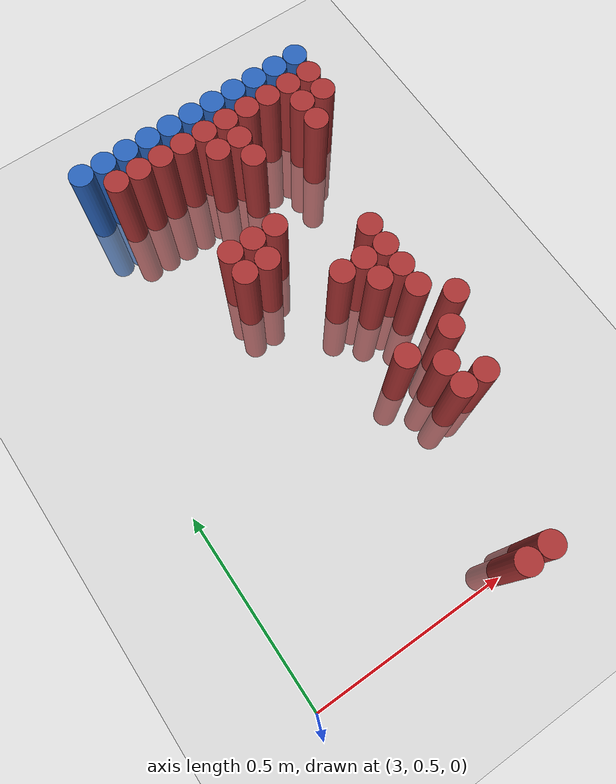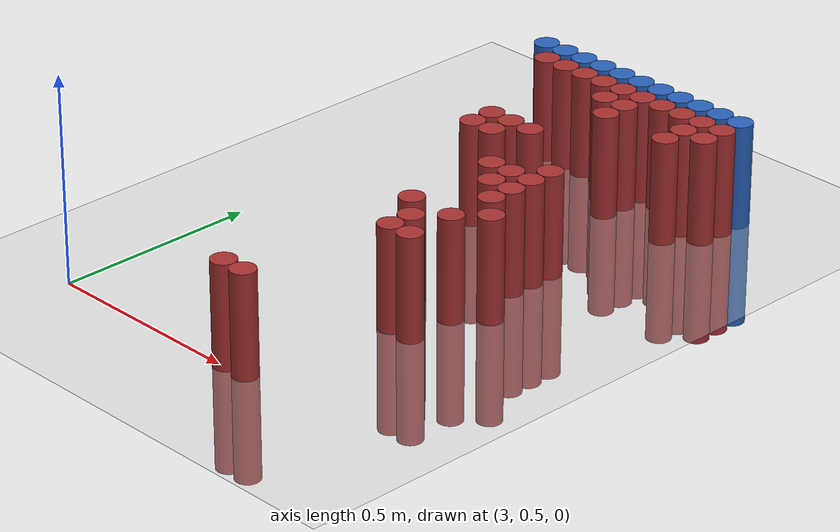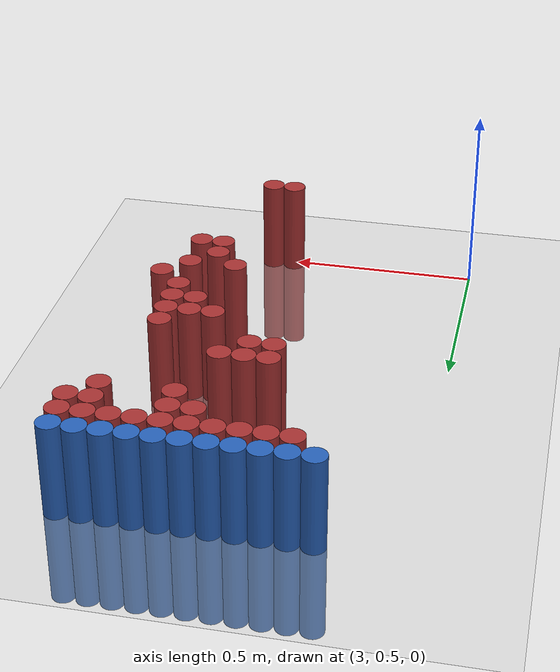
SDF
<sdf version="1.6">
 <world name="default">
  <model name="ground_plane">
   <static>1</static>
   <link name="link">
    <collision name="collision">
     <geometry><plane><normal>0 0 1</normal><size>100 100</size></plane></geometry>
     <surface><friction><ode><mu>100</mu><mu2>50</mu2></ode></friction></surface>
    </collision>
    <visual name="visual">
     <cast_shadows>0</cast_shadows>
     <geometry><plane><normal>0 0 1</normal><size>100 100</size></plane></geometry>
     <material>
      <script><uri>file://media/materials/scripts/gazebo.material</uri><name>Gazebo/Grey</name></script>
     </material>
    </visual>
   </link>
  </model>
  <model name="unit_cylinder_114">
   <static>1</static>
   <pose>3.210000 1.770000 0.000000 0.000000 0.000000 0.000000</pose>
   <link name="link">
    <inertial>
     <mass>1</mass>
     <inertia><ixx>0.145833</ixx><ixy>0</ixy><ixz>0</ixz><iyy>0.145833</iyy><iyz>0</iyz><izz>0.125</izz></inertia>
    </inertial>
    <collision name="collision">
     <geometry><cylinder><radius>0.030000</radius><length>0.5</length></cylinder></geometry>
    </collision>
    <visual name="visual">
     <geometry><cylinder><radius>0.030000</radius><length>0.5</length></cylinder></geometry>
     <material>
      <ambient>0.152000 0.379000 0.720000 1</ambient>
      <diffuse>0.152000 0.379000 0.720000 1</diffuse>
     </material>
     <material>
      <script><name>Gazebo/Grey</name><uri>file://media/materials/scripts/gazebo.material</uri></script>
     </material>
    </visual>
   </link>
  </model>
  <model name="unit_cylinder_115">
   <static>1</static>
   <pose>3.270000 1.770000 0.000000 0.000000 0.000000 0.000000</pose>
   <link name="link">
    <inertial>
     <mass>1</mass>
     <inertia><ixx>0.145833</ixx><ixy>0</ixy><ixz>0</ixz><iyy>0.145833</iyy><iyz>0</iyz><izz>0.125</izz></inertia>
    </inertial>
    <collision name="collision">
     <geometry><cylinder><radius>0.030000</radius><length>0.5</length></cylinder></geometry>
    </collision>
    <visual name="visual">
     <geometry><cylinder><radius>0.030000</radius><length>0.5</length></cylinder></geometry>
     <material>
      <ambient>0.152000 0.379000 0.720000 1</ambient>
      <diffuse>0.152000 0.379000 0.720000 1</diffuse>
     </material>
     <material>
      <script><name>Gazebo/Grey</name><uri>file://media/materials/scripts/gazebo.material</uri></script>
     </material>
    </visual>
   </link>
  </model>
  <model name="unit_cylinder_116">
   <static>1</static>
   <pose>3.330000 1.770000 0.000000 0.000000 0.000000 0.000000</pose>
   <link name="link">
    <inertial>
     <mass>1</mass>
     <inertia><ixx>0.145833</ixx><ixy>0</ixy><ixz>0</ixz><iyy>0.145833</iyy><iyz>0</iyz><izz>0.125</izz></inertia>
    </inertial>
    <collision name="collision">
     <geometry><cylinder><radius>0.030000</radius><length>0.5</length></cylinder></geometry>
    </collision>
    <visual name="visual">
     <geometry><cylinder><radius>0.030000</radius><length>0.5</length></cylinder></geometry>
     <material>
      <ambient>0.152000 0.379000 0.720000 1</ambient>
      <diffuse>0.152000 0.379000 0.720000 1</diffuse>
     </material>
     <material>
      <script><name>Gazebo/Grey</name><uri>file://media/materials/scripts/gazebo.material</uri></script>
     </material>
    </visual>
   </link>
  </model>
  <model name="unit_cylinder_117">
   <static>1</static>
   <pose>3.390000 1.770000 0.000000 0.000000 0.000000 0.000000</pose>
   <link name="link">
    <inertial>
     <mass>1</mass>
     <inertia><ixx>0.145833</ixx><ixy>0</ixy><ixz>0</ixz><iyy>0.145833</iyy><iyz>0</iyz><izz>0.125</izz></inertia>
    </inertial>
    <collision name="collision">
     <geometry><cylinder><radius>0.030000</radius><length>0.5</length></cylinder></geometry>
    </collision>
    <visual name="visual">
     <geometry><cylinder><radius>0.030000</radius><length>0.5</length></cylinder></geometry>
     <material>
      <ambient>0.152000 0.379000 0.720000 1</ambient>
      <diffuse>0.152000 0.379000 0.720000 1</diffuse>
     </material>
     <material>
      <script><name>Gazebo/Grey</name><uri>file://media/materials/scripts/gazebo.material</uri></script>
     </material>
    </visual>
   </link>
  </model>
  <model name="unit_cylinder_118">
   <static>1</static>
   <pose>3.450000 1.770000 0.000000 0.000000 0.000000 0.000000</pose>
   <link name="link">
    <inertial>
     <mass>1</mass>
     <inertia><ixx>0.145833</ixx><ixy>0</ixy><ixz>0</ixz><iyy>0.145833</iyy><iyz>0</iyz><izz>0.125</izz></inertia>
    </inertial>
    <collision name="collision">
     <geometry><cylinder><radius>0.030000</radius><length>0.5</length></cylinder></geometry>
    </collision>
    <visual name="visual">
     <geometry><cylinder><radius>0.030000</radius><length>0.5</length></cylinder></geometry>
     <material>
      <ambient>0.152000 0.379000 0.720000 1</ambient>
      <diffuse>0.152000 0.379000 0.720000 1</diffuse>
     </material>
     <material>
      <script><name>Gazebo/Grey</name><uri>file://media/materials/scripts/gazebo.material</uri></script>
     </material>
    </visual>
   </link>
  </model>
  <model name="unit_cylinder_119">
   <static>1</static>
   <pose>3.510000 1.770000 0.000000 0.000000 0.000000 0.000000</pose>
   <link name="link">
    <inertial>
     <mass>1</mass>
     <inertia><ixx>0.145833</ixx><ixy>0</ixy><ixz>0</ixz><iyy>0.145833</iyy><iyz>0</iyz><izz>0.125</izz></inertia>
    </inertial>
    <collision name="collision">
     <geometry><cylinder><radius>0.030000</radius><length>0.5</length></cylinder></geometry>
    </collision>
    <visual name="visual">
     <geometry><cylinder><radius>0.030000</radius><length>0.5</length></cylinder></geometry>
     <material>
      <ambient>0.152000 0.379000 0.720000 1</ambient>
      <diffuse>0.152000 0.379000 0.720000 1</diffuse>
     </material>
     <material>
      <script><name>Gazebo/Grey</name><uri>file://media/materials/scripts/gazebo.material</uri></script>
     </material>
    </visual>
   </link>
  </model>
  <model name="unit_cylinder_120">
   <static>1</static>
   <pose>3.570000 1.770000 0.000000 0.000000 0.000000 0.000000</pose>
   <link name="link">
    <inertial>
     <mass>1</mass>
     <inertia><ixx>0.145833</ixx><ixy>0</ixy><ixz>0</ixz><iyy>0.145833</iyy><iyz>0</iyz><izz>0.125</izz></inertia>
    </inertial>
    <collision name="collision">
     <geometry><cylinder><radius>0.030000</radius><length>0.5</length></cylinder></geometry>
    </collision>
    <visual name="visual">
     <geometry><cylinder><radius>0.030000</radius><length>0.5</length></cylinder></geometry>
     <material>
      <ambient>0.152000 0.379000 0.720000 1</ambient>
      <diffuse>0.152000 0.379000 0.720000 1</diffuse>
     </material>
     <material>
      <script><name>Gazebo/Grey</name><uri>file://media/materials/scripts/gazebo.material</uri></script>
     </material>
    </visual>
   </link>
  </model>
  <model name="unit_cylinder_121">
   <static>1</static>
   <pose>3.630000 1.770000 0.000000 0.000000 0.000000 0.000000</pose>
   <link name="link">
    <inertial>
     <mass>1</mass>
     <inertia><ixx>0.145833</ixx><ixy>0</ixy><ixz>0</ixz><iyy>0.145833</iyy><iyz>0</iyz><izz>0.125</izz></inertia>
    </inertial>
    <collision name="collision">
     <geometry><cylinder><radius>0.030000</radius><length>0.5</length></cylinder></geometry>
    </collision>
    <visual name="visual">
     <geometry><cylinder><radius>0.030000</radius><length>0.5</length></cylinder></geometry>
     <material>
      <ambient>0.152000 0.379000 0.720000 1</ambient>
      <diffuse>0.152000 0.379000 0.720000 1</diffuse>
     </material>
     <material>
      <script><name>Gazebo/Grey</name><uri>file://media/materials/scripts/gazebo.material</uri></script>
     </material>
    </visual>
   </link>
  </model>
  <model name="unit_cylinder_122">
   <static>1</static>
   <pose>3.690000 1.770000 0.000000 0.000000 0.000000 0.000000</pose>
   <link name="link">
    <inertial>
     <mass>1</mass>
     <inertia><ixx>0.145833</ixx><ixy>0</ixy><ixz>0</ixz><iyy>0.145833</iyy><iyz>0</iyz><izz>0.125</izz></inertia>
    </inertial>
    <collision name="collision">
     <geometry><cylinder><radius>0.030000</radius><length>0.5</length></cylinder></geometry>
    </collision>
    <visual name="visual">
     <geometry><cylinder><radius>0.030000</radius><length>0.5</length></cylinder></geometry>
     <material>
      <ambient>0.152000 0.379000 0.720000 1</ambient>
      <diffuse>0.152000 0.379000 0.720000 1</diffuse>
     </material>
     <material>
      <script><name>Gazebo/Grey</name><uri>file://media/materials/scripts/gazebo.material</uri></script>
     </material>
    </visual>
   </link>
  </model>
  <model name="unit_cylinder_123">
   <static>1</static>
   <pose>3.750000 1.770000 0.000000 0.000000 0.000000 0.000000</pose>
   <link name="link">
    <inertial>
     <mass>1</mass>
     <inertia><ixx>0.145833</ixx><ixy>0</ixy><ixz>0</ixz><iyy>0.145833</iyy><iyz>0</iyz><izz>0.125</izz></inertia>
    </inertial>
    <collision name="collision">
     <geometry><cylinder><radius>0.030000</radius><length>0.5</length></cylinder></geometry>
    </collision>
    <visual name="visual">
     <geometry><cylinder><radius>0.030000</radius><length>0.5</length></cylinder></geometry>
     <material>
      <ambient>0.152000 0.379000 0.720000 1</ambient>
      <diffuse>0.152000 0.379000 0.720000 1</diffuse>
     </material>
     <material>
      <script><name>Gazebo/Grey</name><uri>file://media/materials/scripts/gazebo.material</uri></script>
     </material>
    </visual>
   </link>
  </model>
  <model name="unit_cylinder_124">
   <static>1</static>
   <pose>3.810000 1.770000 0.000000 0.000000 0.000000 0.000000</pose>
   <link name="link">
    <inertial>
     <mass>1</mass>
     <inertia><ixx>0.145833</ixx><ixy>0</ixy><ixz>0</ixz><iyy>0.145833</iyy><iyz>0</iyz><izz>0.125</izz></inertia>
    </inertial>
    <collision name="collision">
     <geometry><cylinder><radius>0.030000</radius><length>0.5</length></cylinder></geometry>
    </collision>
    <visual name="visual">
     <geometry><cylinder><radius>0.030000</radius><length>0.5</length></cylinder></geometry>
     <material>
      <ambient>0.152000 0.379000 0.720000 1</ambient>
      <diffuse>0.152000 0.379000 0.720000 1</diffuse>
     </material>
     <material>
      <script><name>Gazebo/Grey</name><uri>file://media/materials/scripts/gazebo.material</uri></script>
     </material>
    </visual>
   </link>
  </model>
  <model name="unit_cylinder_135">
   <static>1</static>
   <pose>3.270000 1.710000 0.000000 0.000000 0.000000 0.000000</pose>
   <link name="link">
    <inertial>
     <mass>1</mass>
     <inertia><ixx>0.145833</ixx><ixy>0</ixy><ixz>0</ixz><iyy>0.145833</iyy><iyz>0</iyz><izz>0.125</izz></inertia>
    </inertial>
    <collision name="collision">
     <geometry><cylinder><radius>0.030000</radius><length>0.5</length></cylinder></geometry>
    </collision>
    <visual name="visual">
     <geometry><cylinder><radius>0.030000</radius><length>0.5</length></cylinder></geometry>
     <material>
      <ambient>0.648000 0.192000 0.192000 1</ambient>
      <diffuse>0.648000 0.192000 0.192000 1</diffuse>
     </material>
     <material>
      <script><name>Gazebo/Grey</name><uri>file://media/materials/scripts/gazebo.material</uri></script>
     </material>
    </visual>
   </link>
  </model>
  <model name="unit_cylinder_136">
   <static>1</static>
   <pose>3.330000 1.710000 0.000000 0.000000 0.000000 0.000000</pose>
   <link name="link">
    <inertial>
     <mass>1</mass>
     <inertia><ixx>0.145833</ixx><ixy>0</ixy><ixz>0</ixz><iyy>0.145833</iyy><iyz>0</iyz><izz>0.125</izz></inertia>
    </inertial>
    <collision name="collision">
     <geometry><cylinder><radius>0.030000</radius><length>0.5</length></cylinder></geometry>
    </collision>
    <visual name="visual">
     <geometry><cylinder><radius>0.030000</radius><length>0.5</length></cylinder></geometry>
     <material>
      <ambient>0.648000 0.192000 0.192000 1</ambient>
      <diffuse>0.648000 0.192000 0.192000 1</diffuse>
     </material>
     <material>
      <script><name>Gazebo/Grey</name><uri>file://media/materials/scripts/gazebo.material</uri></script>
     </material>
    </visual>
   </link>
  </model>
  <model name="unit_cylinder_137">
   <static>1</static>
   <pose>3.390000 1.710000 0.000000 0.000000 0.000000 0.000000</pose>
   <link name="link">
    <inertial>
     <mass>1</mass>
     <inertia><ixx>0.145833</ixx><ixy>0</ixy><ixz>0</ixz><iyy>0.145833</iyy><iyz>0</iyz><izz>0.125</izz></inertia>
    </inertial>
    <collision name="collision">
     <geometry><cylinder><radius>0.030000</radius><length>0.5</length></cylinder></geometry>
    </collision>
    <visual name="visual">
     <geometry><cylinder><radius>0.030000</radius><length>0.5</length></cylinder></geometry>
     <material>
      <ambient>0.648000 0.192000 0.192000 1</ambient>
      <diffuse>0.648000 0.192000 0.192000 1</diffuse>
     </material>
     <material>
      <script><name>Gazebo/Grey</name><uri>file://media/materials/scripts/gazebo.material</uri></script>
     </material>
    </visual>
   </link>
  </model>
  <model name="unit_cylinder_138">
   <static>1</static>
   <pose>3.450000 1.710000 0.000000 0.000000 0.000000 0.000000</pose>
   <link name="link">
    <inertial>
     <mass>1</mass>
     <inertia><ixx>0.145833</ixx><ixy>0</ixy><ixz>0</ixz><iyy>0.145833</iyy><iyz>0</iyz><izz>0.125</izz></inertia>
    </inertial>
    <collision name="collision">
     <geometry><cylinder><radius>0.030000</radius><length>0.5</length></cylinder></geometry>
    </collision>
    <visual name="visual">
     <geometry><cylinder><radius>0.030000</radius><length>0.5</length></cylinder></geometry>
     <material>
      <ambient>0.648000 0.192000 0.192000 1</ambient>
      <diffuse>0.648000 0.192000 0.192000 1</diffuse>
     </material>
     <material>
      <script><name>Gazebo/Grey</name><uri>file://media/materials/scripts/gazebo.material</uri></script>
     </material>
    </visual>
   </link>
  </model>
  <model name="unit_cylinder_139">
   <static>1</static>
   <pose>3.510000 1.710000 0.000000 0.000000 0.000000 0.000000</pose>
   <link name="link">
    <inertial>
     <mass>1</mass>
     <inertia><ixx>0.145833</ixx><ixy>0</ixy><ixz>0</ixz><iyy>0.145833</iyy><iyz>0</iyz><izz>0.125</izz></inertia>
    </inertial>
    <collision name="collision">
     <geometry><cylinder><radius>0.030000</radius><length>0.5</length></cylinder></geometry>
    </collision>
    <visual name="visual">
     <geometry><cylinder><radius>0.030000</radius><length>0.5</length></cylinder></geometry>
     <material>
      <ambient>0.648000 0.192000 0.192000 1</ambient>
      <diffuse>0.648000 0.192000 0.192000 1</diffuse>
     </material>
     <material>
      <script><name>Gazebo/Grey</name><uri>file://media/materials/scripts/gazebo.material</uri></script>
     </material>
    </visual>
   </link>
  </model>
  <model name="unit_cylinder_140">
   <static>1</static>
   <pose>3.570000 1.710000 0.000000 0.000000 0.000000 0.000000</pose>
   <link name="link">
    <inertial>
     <mass>1</mass>
     <inertia><ixx>0.145833</ixx><ixy>0</ixy><ixz>0</ixz><iyy>0.145833</iyy><iyz>0</iyz><izz>0.125</izz></inertia>
    </inertial>
    <collision name="collision">
     <geometry><cylinder><radius>0.030000</radius><length>0.5</length></cylinder></geometry>
    </collision>
    <visual name="visual">
     <geometry><cylinder><radius>0.030000</radius><length>0.5</length></cylinder></geometry>
     <material>
      <ambient>0.648000 0.192000 0.192000 1</ambient>
      <diffuse>0.648000 0.192000 0.192000 1</diffuse>
     </material>
     <material>
      <script><name>Gazebo/Grey</name><uri>file://media/materials/scripts/gazebo.material</uri></script>
     </material>
    </visual>
   </link>
  </model>
  <model name="unit_cylinder_141">
   <static>1</static>
   <pose>3.630000 1.710000 0.000000 0.000000 0.000000 0.000000</pose>
   <link name="link">
    <inertial>
     <mass>1</mass>
     <inertia><ixx>0.145833</ixx><ixy>0</ixy><ixz>0</ixz><iyy>0.145833</iyy><iyz>0</iyz><izz>0.125</izz></inertia>
    </inertial>
    <collision name="collision">
     <geometry><cylinder><radius>0.030000</radius><length>0.5</length></cylinder></geometry>
    </collision>
    <visual name="visual">
     <geometry><cylinder><radius>0.030000</radius><length>0.5</length></cylinder></geometry>
     <material>
      <ambient>0.648000 0.192000 0.192000 1</ambient>
      <diffuse>0.648000 0.192000 0.192000 1</diffuse>
     </material>
     <material>
      <script><name>Gazebo/Grey</name><uri>file://media/materials/scripts/gazebo.material</uri></script>
     </material>
    </visual>
   </link>
  </model>
  <model name="unit_cylinder_142">
   <static>1</static>
   <pose>3.690000 1.710000 0.000000 0.000000 0.000000 0.000000</pose>
   <link name="link">
    <inertial>
     <mass>1</mass>
     <inertia><ixx>0.145833</ixx><ixy>0</ixy><ixz>0</ixz><iyy>0.145833</iyy><iyz>0</iyz><izz>0.125</izz></inertia>
    </inertial>
    <collision name="collision">
     <geometry><cylinder><radius>0.030000</radius><length>0.5</length></cylinder></geometry>
    </collision>
    <visual name="visual">
     <geometry><cylinder><radius>0.030000</radius><length>0.5</length></cylinder></geometry>
     <material>
      <ambient>0.648000 0.192000 0.192000 1</ambient>
      <diffuse>0.648000 0.192000 0.192000 1</diffuse>
     </material>
     <material>
      <script><name>Gazebo/Grey</name><uri>file://media/materials/scripts/gazebo.material</uri></script>
     </material>
    </visual>
   </link>
  </model>
  <model name="unit_cylinder_143">
   <static>1</static>
   <pose>3.750000 1.710000 0.000000 0.000000 0.000000 0.000000</pose>
   <link name="link">
    <inertial>
     <mass>1</mass>
     <inertia><ixx>0.145833</ixx><ixy>0</ixy><ixz>0</ixz><iyy>0.145833</iyy><iyz>0</iyz><izz>0.125</izz></inertia>
    </inertial>
    <collision name="collision">
     <geometry><cylinder><radius>0.030000</radius><length>0.5</length></cylinder></geometry>
    </collision>
    <visual name="visual">
     <geometry><cylinder><radius>0.030000</radius><length>0.5</length></cylinder></geometry>
     <material>
      <ambient>0.648000 0.192000 0.192000 1</ambient>
      <diffuse>0.648000 0.192000 0.192000 1</diffuse>
     </material>
     <material>
      <script><name>Gazebo/Grey</name><uri>file://media/materials/scripts/gazebo.material</uri></script>
     </material>
    </visual>
   </link>
  </model>
  <model name="unit_cylinder_144">
   <static>1</static>
   <pose>3.810000 1.710000 0.000000 0.000000 0.000000 0.000000</pose>
   <link name="link">
    <inertial>
     <mass>1</mass>
     <inertia><ixx>0.145833</ixx><ixy>0</ixy><ixz>0</ixz><iyy>0.145833</iyy><iyz>0</iyz><izz>0.125</izz></inertia>
    </inertial>
    <collision name="collision">
     <geometry><cylinder><radius>0.030000</radius><length>0.5</length></cylinder></geometry>
    </collision>
    <visual name="visual">
     <geometry><cylinder><radius>0.030000</radius><length>0.5</length></cylinder></geometry>
     <material>
      <ambient>0.648000 0.192000 0.192000 1</ambient>
      <diffuse>0.648000 0.192000 0.192000 1</diffuse>
     </material>
     <material>
      <script><name>Gazebo/Grey</name><uri>file://media/materials/scripts/gazebo.material</uri></script>
     </material>
    </visual>
   </link>
  </model>
  <model name="unit_cylinder_146">
   <static>1</static>
   <pose>3.510000 1.650000 0.000000 0.000000 0.000000 0.000000</pose>
   <link name="link">
    <inertial>
     <mass>1</mass>
     <inertia><ixx>0.145833</ixx><ixy>0</ixy><ixz>0</ixz><iyy>0.145833</iyy><iyz>0</iyz><izz>0.125</izz></inertia>
    </inertial>
    <collision name="collision">
     <geometry><cylinder><radius>0.030000</radius><length>0.5</length></cylinder></geometry>
    </collision>
    <visual name="visual">
     <geometry><cylinder><radius>0.030000</radius><length>0.5</length></cylinder></geometry>
     <material>
      <ambient>0.648000 0.192000 0.192000 1</ambient>
      <diffuse>0.648000 0.192000 0.192000 1</diffuse>
     </material>
     <material>
      <script><name>Gazebo/Grey</name><uri>file://media/materials/scripts/gazebo.material</uri></script>
     </material>
    </visual>
   </link>
  </model>
  <model name="unit_cylinder_147">
   <static>1</static>
   <pose>3.570000 1.650000 0.000000 0.000000 0.000000 0.000000</pose>
   <link name="link">
    <inertial>
     <mass>1</mass>
     <inertia><ixx>0.145833</ixx><ixy>0</ixy><ixz>0</ixz><iyy>0.145833</iyy><iyz>0</iyz><izz>0.125</izz></inertia>
    </inertial>
    <collision name="collision">
     <geometry><cylinder><radius>0.030000</radius><length>0.5</length></cylinder></geometry>
    </collision>
    <visual name="visual">
     <geometry><cylinder><radius>0.030000</radius><length>0.5</length></cylinder></geometry>
     <material>
      <ambient>0.648000 0.192000 0.192000 1</ambient>
      <diffuse>0.648000 0.192000 0.192000 1</diffuse>
     </material>
     <material>
      <script><name>Gazebo/Grey</name><uri>file://media/materials/scripts/gazebo.material</uri></script>
     </material>
    </visual>
   </link>
  </model>
  <model name="unit_cylinder_148">
   <static>1</static>
   <pose>3.750000 1.650000 0.000000 0.000000 0.000000 0.000000</pose>
   <link name="link">
    <inertial>
     <mass>1</mass>
     <inertia><ixx>0.145833</ixx><ixy>0</ixy><ixz>0</ixz><iyy>0.145833</iyy><iyz>0</iyz><izz>0.125</izz></inertia>
    </inertial>
    <collision name="collision">
     <geometry><cylinder><radius>0.030000</radius><length>0.5</length></cylinder></geometry>
    </collision>
    <visual name="visual">
     <geometry><cylinder><radius>0.030000</radius><length>0.5</length></cylinder></geometry>
     <material>
      <ambient>0.648000 0.192000 0.192000 1</ambient>
      <diffuse>0.648000 0.192000 0.192000 1</diffuse>
     </material>
     <material>
      <script><name>Gazebo/Grey</name><uri>file://media/materials/scripts/gazebo.material</uri></script>
     </material>
    </visual>
   </link>
  </model>
  <model name="unit_cylinder_149">
   <static>1</static>
   <pose>3.810000 1.650000 0.000000 0.000000 0.000000 0.000000</pose>
   <link name="link">
    <inertial>
     <mass>1</mass>
     <inertia><ixx>0.145833</ixx><ixy>0</ixy><ixz>0</ixz><iyy>0.145833</iyy><iyz>0</iyz><izz>0.125</izz></inertia>
    </inertial>
    <collision name="collision">
     <geometry><cylinder><radius>0.030000</radius><length>0.5</length></cylinder></geometry>
    </collision>
    <visual name="visual">
     <geometry><cylinder><radius>0.030000</radius><length>0.5</length></cylinder></geometry>
     <material>
      <ambient>0.648000 0.192000 0.192000 1</ambient>
      <diffuse>0.648000 0.192000 0.192000 1</diffuse>
     </material>
     <material>
      <script><name>Gazebo/Grey</name><uri>file://media/materials/scripts/gazebo.material</uri></script>
     </material>
    </visual>
   </link>
  </model>
  <model name="unit_cylinder_151">
   <static>1</static>
   <pose>3.570000 1.590000 0.000000 0.000000 0.000000 0.000000</pose>
   <link name="link">
    <inertial>
     <mass>1</mass>
     <inertia><ixx>0.145833</ixx><ixy>0</ixy><ixz>0</ixz><iyy>0.145833</iyy><iyz>0</iyz><izz>0.125</izz></inertia>
    </inertial>
    <collision name="collision">
     <geometry><cylinder><radius>0.030000</radius><length>0.5</length></cylinder></geometry>
    </collision>
    <visual name="visual">
     <geometry><cylinder><radius>0.030000</radius><length>0.5</length></cylinder></geometry>
     <material>
      <ambient>0.648000 0.192000 0.192000 1</ambient>
      <diffuse>0.648000 0.192000 0.192000 1</diffuse>
     </material>
     <material>
      <script><name>Gazebo/Grey</name><uri>file://media/materials/scripts/gazebo.material</uri></script>
     </material>
    </visual>
   </link>
  </model>
  <model name="unit_cylinder_152">
   <static>1</static>
   <pose>3.750000 1.590000 0.000000 0.000000 0.000000 0.000000</pose>
   <link name="link">
    <inertial>
     <mass>1</mass>
     <inertia><ixx>0.145833</ixx><ixy>0</ixy><ixz>0</ixz><iyy>0.145833</iyy><iyz>0</iyz><izz>0.125</izz></inertia>
    </inertial>
    <collision name="collision">
     <geometry><cylinder><radius>0.030000</radius><length>0.5</length></cylinder></geometry>
    </collision>
    <visual name="visual">
     <geometry><cylinder><radius>0.030000</radius><length>0.5</length></cylinder></geometry>
     <material>
      <ambient>0.648000 0.192000 0.192000 1</ambient>
      <diffuse>0.648000 0.192000 0.192000 1</diffuse>
     </material>
     <material>
      <script><name>Gazebo/Grey</name><uri>file://media/materials/scripts/gazebo.material</uri></script>
     </material>
    </visual>
   </link>
  </model>
  <model name="unit_cylinder_161">
   <static>1</static>
   <pose>3.390000 1.410000 0.000000 0.000000 0.000000 0.000000</pose>
   <link name="link">
    <inertial>
     <mass>1</mass>
     <inertia><ixx>0.145833</ixx><ixy>0</ixy><ixz>0</ixz><iyy>0.145833</iyy><iyz>0</iyz><izz>0.125</izz></inertia>
    </inertial>
    <collision name="collision">
     <geometry><cylinder><radius>0.030000</radius><length>0.5</length></cylinder></geometry>
    </collision>
    <visual name="visual">
     <geometry><cylinder><radius>0.030000</radius><length>0.5</length></cylinder></geometry>
     <material>
      <ambient>0.648000 0.192000 0.192000 1</ambient>
      <diffuse>0.648000 0.192000 0.192000 1</diffuse>
     </material>
     <material>
      <script><name>Gazebo/Grey</name><uri>file://media/materials/scripts/gazebo.material</uri></script>
     </material>
    </visual>
   </link>
  </model>
  <model name="unit_cylinder_162">
   <static>1</static>
   <pose>3.450000 1.410000 0.000000 0.000000 0.000000 0.000000</pose>
   <link name="link">
    <inertial>
     <mass>1</mass>
     <inertia><ixx>0.145833</ixx><ixy>0</ixy><ixz>0</ixz><iyy>0.145833</iyy><iyz>0</iyz><izz>0.125</izz></inertia>
    </inertial>
    <collision name="collision">
     <geometry><cylinder><radius>0.030000</radius><length>0.5</length></cylinder></geometry>
    </collision>
    <visual name="visual">
     <geometry><cylinder><radius>0.030000</radius><length>0.5</length></cylinder></geometry>
     <material>
      <ambient>0.648000 0.192000 0.192000 1</ambient>
      <diffuse>0.648000 0.192000 0.192000 1</diffuse>
     </material>
     <material>
      <script><name>Gazebo/Grey</name><uri>file://media/materials/scripts/gazebo.material</uri></script>
     </material>
    </visual>
   </link>
  </model>
  <model name="unit_cylinder_163">
   <static>1</static>
   <pose>3.510000 1.410000 0.000000 0.000000 0.000000 0.000000</pose>
   <link name="link">
    <inertial>
     <mass>1</mass>
     <inertia><ixx>0.145833</ixx><ixy>0</ixy><ixz>0</ixz><iyy>0.145833</iyy><iyz>0</iyz><izz>0.125</izz></inertia>
    </inertial>
    <collision name="collision">
     <geometry><cylinder><radius>0.030000</radius><length>0.5</length></cylinder></geometry>
    </collision>
    <visual name="visual">
     <geometry><cylinder><radius>0.030000</radius><length>0.5</length></cylinder></geometry>
     <material>
      <ambient>0.648000 0.192000 0.192000 1</ambient>
      <diffuse>0.648000 0.192000 0.192000 1</diffuse>
     </material>
     <material>
      <script><name>Gazebo/Grey</name><uri>file://media/materials/scripts/gazebo.material</uri></script>
     </material>
    </visual>
   </link>
  </model>
  <model name="unit_cylinder_167">
   <static>1</static>
   <pose>3.390000 1.350000 0.000000 0.000000 0.000000 0.000000</pose>
   <link name="link">
    <inertial>
     <mass>1</mass>
     <inertia><ixx>0.145833</ixx><ixy>0</ixy><ixz>0</ixz><iyy>0.145833</iyy><iyz>0</iyz><izz>0.125</izz></inertia>
    </inertial>
    <collision name="collision">
     <geometry><cylinder><radius>0.030000</radius><length>0.5</length></cylinder></geometry>
    </collision>
    <visual name="visual">
     <geometry><cylinder><radius>0.030000</radius><length>0.5</length></cylinder></geometry>
     <material>
      <ambient>0.648000 0.192000 0.192000 1</ambient>
      <diffuse>0.648000 0.192000 0.192000 1</diffuse>
     </material>
     <material>
      <script><name>Gazebo/Grey</name><uri>file://media/materials/scripts/gazebo.material</uri></script>
     </material>
    </visual>
   </link>
  </model>
  <model name="unit_cylinder_168">
   <static>1</static>
   <pose>3.450000 1.350000 0.000000 0.000000 0.000000 0.000000</pose>
   <link name="link">
    <inertial>
     <mass>1</mass>
     <inertia><ixx>0.145833</ixx><ixy>0</ixy><ixz>0</ixz><iyy>0.145833</iyy><iyz>0</iyz><izz>0.125</izz></inertia>
    </inertial>
    <collision name="collision">
     <geometry><cylinder><radius>0.030000</radius><length>0.5</length></cylinder></geometry>
    </collision>
    <visual name="visual">
     <geometry><cylinder><radius>0.030000</radius><length>0.5</length></cylinder></geometry>
     <material>
      <ambient>0.648000 0.192000 0.192000 1</ambient>
      <diffuse>0.648000 0.192000 0.192000 1</diffuse>
     </material>
     <material>
      <script><name>Gazebo/Grey</name><uri>file://media/materials/scripts/gazebo.material</uri></script>
     </material>
    </visual>
   </link>
  </model>
  <model name="unit_cylinder_172">
   <static>1</static>
   <pose>3.690000 1.290000 0.000000 0.000000 0.000000 0.000000</pose>
   <link name="link">
    <inertial>
     <mass>1</mass>
     <inertia><ixx>0.145833</ixx><ixy>0</ixy><ixz>0</ixz><iyy>0.145833</iyy><iyz>0</iyz><izz>0.125</izz></inertia>
    </inertial>
    <collision name="collision">
     <geometry><cylinder><radius>0.030000</radius><length>0.5</length></cylinder></geometry>
    </collision>
    <visual name="visual">
     <geometry><cylinder><radius>0.030000</radius><length>0.5</length></cylinder></geometry>
     <material>
      <ambient>0.648000 0.192000 0.192000 1</ambient>
      <diffuse>0.648000 0.192000 0.192000 1</diffuse>
     </material>
     <material>
      <script><name>Gazebo/Grey</name><uri>file://media/materials/scripts/gazebo.material</uri></script>
     </material>
    </visual>
   </link>
  </model>
  <model name="unit_cylinder_179">
   <static>1</static>
   <pose>3.570000 1.230000 0.000000 0.000000 0.000000 0.000000</pose>
   <link name="link">
    <inertial>
     <mass>1</mass>
     <inertia><ixx>0.145833</ixx><ixy>0</ixy><ixz>0</ixz><iyy>0.145833</iyy><iyz>0</iyz><izz>0.125</izz></inertia>
    </inertial>
    <collision name="collision">
     <geometry><cylinder><radius>0.030000</radius><length>0.5</length></cylinder></geometry>
    </collision>
    <visual name="visual">
     <geometry><cylinder><radius>0.030000</radius><length>0.5</length></cylinder></geometry>
     <material>
      <ambient>0.648000 0.192000 0.192000 1</ambient>
      <diffuse>0.648000 0.192000 0.192000 1</diffuse>
     </material>
     <material>
      <script><name>Gazebo/Grey</name><uri>file://media/materials/scripts/gazebo.material</uri></script>
     </material>
    </visual>
   </link>
  </model>
  <model name="unit_cylinder_180">
   <static>1</static>
   <pose>3.630000 1.230000 0.000000 0.000000 0.000000 0.000000</pose>
   <link name="link">
    <inertial>
     <mass>1</mass>
     <inertia><ixx>0.145833</ixx><ixy>0</ixy><ixz>0</ixz><iyy>0.145833</iyy><iyz>0</iyz><izz>0.125</izz></inertia>
    </inertial>
    <collision name="collision">
     <geometry><cylinder><radius>0.030000</radius><length>0.5</length></cylinder></geometry>
    </collision>
    <visual name="visual">
     <geometry><cylinder><radius>0.030000</radius><length>0.5</length></cylinder></geometry>
     <material>
      <ambient>0.648000 0.192000 0.192000 1</ambient>
      <diffuse>0.648000 0.192000 0.192000 1</diffuse>
     </material>
     <material>
      <script><name>Gazebo/Grey</name><uri>file://media/materials/scripts/gazebo.material</uri></script>
     </material>
    </visual>
   </link>
  </model>
  <model name="unit_cylinder_181">
   <static>1</static>
   <pose>3.690000 1.230000 0.000000 0.000000 0.000000 0.000000</pose>
   <link name="link">
    <inertial>
     <mass>1</mass>
     <inertia><ixx>0.145833</ixx><ixy>0</ixy><ixz>0</ixz><iyy>0.145833</iyy><iyz>0</iyz><izz>0.125</izz></inertia>
    </inertial>
    <collision name="collision">
     <geometry><cylinder><radius>0.030000</radius><length>0.5</length></cylinder></geometry>
    </collision>
    <visual name="visual">
     <geometry><cylinder><radius>0.030000</radius><length>0.5</length></cylinder></geometry>
     <material>
      <ambient>0.648000 0.192000 0.192000 1</ambient>
      <diffuse>0.648000 0.192000 0.192000 1</diffuse>
     </material>
     <material>
      <script><name>Gazebo/Grey</name><uri>file://media/materials/scripts/gazebo.material</uri></script>
     </material>
    </visual>
   </link>
  </model>
  <model name="unit_cylinder_188">
   <static>1</static>
   <pose>3.630000 1.170000 0.000000 0.000000 0.000000 0.000000</pose>
   <link name="link">
    <inertial>
     <mass>1</mass>
     <inertia><ixx>0.145833</ixx><ixy>0</ixy><ixz>0</ixz><iyy>0.145833</iyy><iyz>0</iyz><izz>0.125</izz></inertia>
    </inertial>
    <collision name="collision">
     <geometry><cylinder><radius>0.030000</radius><length>0.5</length></cylinder></geometry>
    </collision>
    <visual name="visual">
     <geometry><cylinder><radius>0.030000</radius><length>0.5</length></cylinder></geometry>
     <material>
      <ambient>0.648000 0.192000 0.192000 1</ambient>
      <diffuse>0.648000 0.192000 0.192000 1</diffuse>
     </material>
     <material>
      <script><name>Gazebo/Grey</name><uri>file://media/materials/scripts/gazebo.material</uri></script>
     </material>
    </visual>
   </link>
  </model>
  <model name="unit_cylinder_189">
   <static>1</static>
   <pose>3.690000 1.170000 0.000000 0.000000 0.000000 0.000000</pose>
   <link name="link">
    <inertial>
     <mass>1</mass>
     <inertia><ixx>0.145833</ixx><ixy>0</ixy><ixz>0</ixz><iyy>0.145833</iyy><iyz>0</iyz><izz>0.125</izz></inertia>
    </inertial>
    <collision name="collision">
     <geometry><cylinder><radius>0.030000</radius><length>0.5</length></cylinder></geometry>
    </collision>
    <visual name="visual">
     <geometry><cylinder><radius>0.030000</radius><length>0.5</length></cylinder></geometry>
     <material>
      <ambient>0.648000 0.192000 0.192000 1</ambient>
      <diffuse>0.648000 0.192000 0.192000 1</diffuse>
     </material>
     <material>
      <script><name>Gazebo/Grey</name><uri>file://media/materials/scripts/gazebo.material</uri></script>
     </material>
    </visual>
   </link>
  </model>
  <model name="unit_cylinder_190">
   <static>1</static>
   <pose>3.690000 1.110000 0.000000 0.000000 0.000000 0.000000</pose>
   <link name="link">
    <inertial>
     <mass>1</mass>
     <inertia><ixx>0.145833</ixx><ixy>0</ixy><ixz>0</ixz><iyy>0.145833</iyy><iyz>0</iyz><izz>0.125</izz></inertia>
    </inertial>
    <collision name="collision">
     <geometry><cylinder><radius>0.030000</radius><length>0.5</length></cylinder></geometry>
    </collision>
    <visual name="visual">
     <geometry><cylinder><radius>0.030000</radius><length>0.5</length></cylinder></geometry>
     <material>
      <ambient>0.648000 0.192000 0.192000 1</ambient>
      <diffuse>0.648000 0.192000 0.192000 1</diffuse>
     </material>
     <material>
      <script><name>Gazebo/Grey</name><uri>file://media/materials/scripts/gazebo.material</uri></script>
     </material>
    </visual>
   </link>
  </model>
  <model name="unit_cylinder_191">
   <static>1</static>
   <pose>3.750000 1.050000 0.000000 0.000000 0.000000 0.000000</pose>
   <link name="link">
    <inertial>
     <mass>1</mass>
     <inertia><ixx>0.145833</ixx><ixy>0</ixy><ixz>0</ixz><iyy>0.145833</iyy><iyz>0</iyz><izz>0.125</izz></inertia>
    </inertial>
    <collision name="collision">
     <geometry><cylinder><radius>0.030000</radius><length>0.5</length></cylinder></geometry>
    </collision>
    <visual name="visual">
     <geometry><cylinder><radius>0.030000</radius><length>0.5</length></cylinder></geometry>
     <material>
      <ambient>0.648000 0.192000 0.192000 1</ambient>
      <diffuse>0.648000 0.192000 0.192000 1</diffuse>
     </material>
     <material>
      <script><name>Gazebo/Grey</name><uri>file://media/materials/scripts/gazebo.material</uri></script>
     </material>
    </visual>
   </link>
  </model>
  <model name="unit_cylinder_192">
   <static>1</static>
   <pose>3.570000 0.990000 0.000000 0.000000 0.000000 0.000000</pose>
   <link name="link">
    <inertial>
     <mass>1</mass>
     <inertia><ixx>0.145833</ixx><ixy>0</ixy><ixz>0</ixz><iyy>0.145833</iyy><iyz>0</iyz><izz>0.125</izz></inertia>
    </inertial>
    <collision name="collision">
     <geometry><cylinder><radius>0.030000</radius><length>0.5</length></cylinder></geometry>
    </collision>
    <visual name="visual">
     <geometry><cylinder><radius>0.030000</radius><length>0.5</length></cylinder></geometry>
     <material>
      <ambient>0.648000 0.192000 0.192000 1</ambient>
      <diffuse>0.648000 0.192000 0.192000 1</diffuse>
     </material>
     <material>
      <script><name>Gazebo/Grey</name><uri>file://media/materials/scripts/gazebo.material</uri></script>
     </material>
    </visual>
   </link>
  </model>
  <model name="unit_cylinder_193">
   <static>1</static>
   <pose>3.690000 0.990000 0.000000 0.000000 0.000000 0.000000</pose>
   <link name="link">
    <inertial>
     <mass>1</mass>
     <inertia><ixx>0.145833</ixx><ixy>0</ixy><ixz>0</ixz><iyy>0.145833</iyy><iyz>0</iyz><izz>0.125</izz></inertia>
    </inertial>
    <collision name="collision">
     <geometry><cylinder><radius>0.030000</radius><length>0.5</length></cylinder></geometry>
    </collision>
    <visual name="visual">
     <geometry><cylinder><radius>0.030000</radius><length>0.5</length></cylinder></geometry>
     <material>
      <ambient>0.648000 0.192000 0.192000 1</ambient>
      <diffuse>0.648000 0.192000 0.192000 1</diffuse>
     </material>
     <material>
      <script><name>Gazebo/Grey</name><uri>file://media/materials/scripts/gazebo.material</uri></script>
     </material>
    </visual>
   </link>
  </model>
  <model name="unit_cylinder_194">
   <static>1</static>
   <pose>3.630000 0.930000 0.000000 0.000000 0.000000 0.000000</pose>
   <link name="link">
    <inertial>
     <mass>1</mass>
     <inertia><ixx>0.145833</ixx><ixy>0</ixy><ixz>0</ixz><iyy>0.145833</iyy><iyz>0</iyz><izz>0.125</izz></inertia>
    </inertial>
    <collision name="collision">
     <geometry><cylinder><radius>0.030000</radius><length>0.5</length></cylinder></geometry>
    </collision>
    <visual name="visual">
     <geometry><cylinder><radius>0.030000</radius><length>0.5</length></cylinder></geometry>
     <material>
      <ambient>0.648000 0.192000 0.192000 1</ambient>
      <diffuse>0.648000 0.192000 0.192000 1</diffuse>
     </material>
     <material>
      <script><name>Gazebo/Grey</name><uri>file://media/materials/scripts/gazebo.material</uri></script>
     </material>
    </visual>
   </link>
  </model>
  <model name="unit_cylinder_195">
   <static>1</static>
   <pose>3.630000 0.870000 0.000000 0.000000 0.000000 0.000000</pose>
   <link name="link">
    <inertial>
     <mass>1</mass>
     <inertia><ixx>0.145833</ixx><ixy>0</ixy><ixz>0</ixz><iyy>0.145833</iyy><iyz>0</iyz><izz>0.125</izz></inertia>
    </inertial>
    <collision name="collision">
     <geometry><cylinder><radius>0.030000</radius><length>0.5</length></cylinder></geometry>
    </collision>
    <visual name="visual">
     <geometry><cylinder><radius>0.030000</radius><length>0.5</length></cylinder></geometry>
     <material>
      <ambient>0.648000 0.192000 0.192000 1</ambient>
      <diffuse>0.648000 0.192000 0.192000 1</diffuse>
     </material>
     <material>
      <script><name>Gazebo/Grey</name><uri>file://media/materials/scripts/gazebo.material</uri></script>
     </material>
    </visual>
   </link>
  </model>
  <model name="unit_cylinder_196">
   <static>1</static>
   <pose>3.690000 0.870000 0.000000 0.000000 0.000000 0.000000</pose>
   <link name="link">
    <inertial>
     <mass>1</mass>
     <inertia><ixx>0.145833</ixx><ixy>0</ixy><ixz>0</ixz><iyy>0.145833</iyy><iyz>0</iyz><izz>0.125</izz></inertia>
    </inertial>
    <collision name="collision">
     <geometry><cylinder><radius>0.030000</radius><length>0.5</length></cylinder></geometry>
    </collision>
    <visual name="visual">
     <geometry><cylinder><radius>0.030000</radius><length>0.5</length></cylinder></geometry>
     <material>
      <ambient>0.648000 0.192000 0.192000 1</ambient>
      <diffuse>0.648000 0.192000 0.192000 1</diffuse>
     </material>
     <material>
      <script><name>Gazebo/Grey</name><uri>file://media/materials/scripts/gazebo.material</uri></script>
     </material>
    </visual>
   </link>
  </model>
  <model name="unit_cylinder_211">
   <static>1</static>
   <pose>3.510000 0.510000 0.000000 0.000000 0.000000 0.000000</pose>
   <link name="link">
    <inertial>
     <mass>1</mass>
     <inertia><ixx>0.145833</ixx><ixy>0</ixy><ixz>0</ixz><iyy>0.145833</iyy><iyz>0</iyz><izz>0.125</izz></inertia>
    </inertial>
    <collision name="collision">
     <geometry><cylinder><radius>0.030000</radius><length>0.5</length></cylinder></geometry>
    </collision>
    <visual name="visual">
     <geometry><cylinder><radius>0.030000</radius><length>0.5</length></cylinder></geometry>
     <material>
      <ambient>0.648000 0.192000 0.192000 1</ambient>
      <diffuse>0.648000 0.192000 0.192000 1</diffuse>
     </material>
     <material>
      <script><name>Gazebo/Grey</name><uri>file://media/materials/scripts/gazebo.material</uri></script>
     </material>
    </visual>
   </link>
  </model>
  <model name="unit_cylinder_212">
   <static>1</static>
   <pose>3.570000 0.510000 0.000000 0.000000 0.000000 0.000000</pose>
   <link name="link">
    <inertial>
     <mass>1</mass>
     <inertia><ixx>0.145833</ixx><ixy>0</ixy><ixz>0</ixz><iyy>0.145833</iyy><iyz>0</iyz><izz>0.125</izz></inertia>
    </inertial>
    <collision name="collision">
     <geometry><cylinder><radius>0.030000</radius><length>0.5</length></cylinder></geometry>
    </collision>
    <visual name="visual">
     <geometry><cylinder><radius>0.030000</radius><length>0.5</length></cylinder></geometry>
     <material>
      <ambient>0.648000 0.192000 0.192000 1</ambient>
      <diffuse>0.648000 0.192000 0.192000 1</diffuse>
     </material>
     <material>
      <script><name>Gazebo/Grey</name><uri>file://media/materials/scripts/gazebo.material</uri></script>
     </material>
    </visual>
   </link>
  </model>
 </world>
</sdf>
